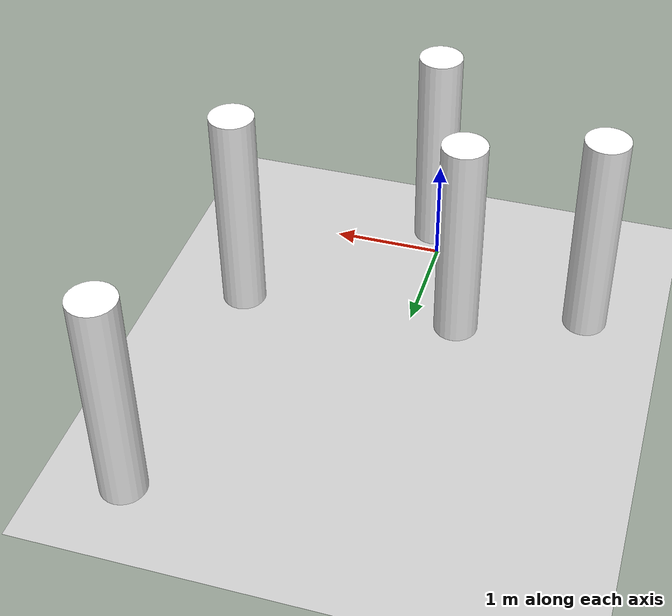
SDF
<sdf version="1.5">
 <world name="mrsim">
  <physics type="ode">
   <max_step_size>0.002000</max_step_size>
   <real_time_factor>1.000000</real_time_factor>
   <real_time_update_rate>500.000000</real_time_update_rate>
   <gravity>0 0 -9.81</gravity>
   <magnetic_field>23.816e-6 -0.41e-6 -39.829e-6</magnetic_field>
  </physics>
  <include><uri>model://ground_plane</uri></include>
  <include><uri>model://sun</uri></include>
  <model name="p1">
   <pose>-0.42 1 1 0 0 0</pose>
   <static>1</static>
   <link name="main">
    <visual name="pillar">
     <geometry><cylinder><radius>0.2</radius><length>2</length></cylinder></geometry>
     <material><ambient>0.3 0.3 0.3 1</ambient><diffuse>1.0 1.0 1.0 1</diffuse></material>
    </visual>
   </link>
  </model>
  <model name="p2">
   <pose>0.1 -0.3 1 0 0 0</pose>
   <static>1</static>
   <link name="main">
    <visual name="pillar">
     <geometry><cylinder><radius>0.2</radius><length>2</length></cylinder></geometry>
     <material><ambient>0.3 0.3 0.3 1</ambient><diffuse>1.0 1.0 1.0 1</diffuse></material>
    </visual>
   </link>
  </model>
  <model name="p4">
   <pose>-1.54 0.6 1 0 0 0</pose>
   <static>1</static>
   <link name="main">
    <visual name="pillar">
     <geometry><cylinder><radius>0.2</radius><length>2</length></cylinder></geometry>
     <material><ambient>0.3 0.3 0.3 1</ambient><diffuse>1.0 1.0 1.0 1</diffuse></material>
    </visual>
   </link>
  </model>
  <model name="p5">
   <pose>1.58 1.13 1 0 0 0</pose>
   <static>1</static>
   <link name="main">
    <visual name="pillar">
     <geometry><cylinder><radius>0.2</radius><length>2</length></cylinder></geometry>
     <material><ambient>0.3 0.3 0.3 1</ambient><diffuse>1.0 1.0 1.0 1</diffuse></material>
    </visual>
   </link>
  </model>
  <model name="p6">
   <pose>1.7 3.6 1 0 0 0</pose>
   <static>1</static>
   <link name="main">
    <visual name="pillar">
     <geometry><cylinder><radius>0.2</radius><length>2</length></cylinder></geometry>
     <material><ambient>0.3 0.3 0.3 1</ambient><diffuse>1.0 1.0 1.0 1</diffuse></material>
    </visual>
   </link>
  </model>
  <plugin name="optitrack" filename="optitrack-gazebo.so">
   <hz>1000</hz>
   <port>1509</port>
   <publish><link>QR_0::qr::base</link><name>QR_0</name></publish>
  </plugin>
 </world>
</sdf>
